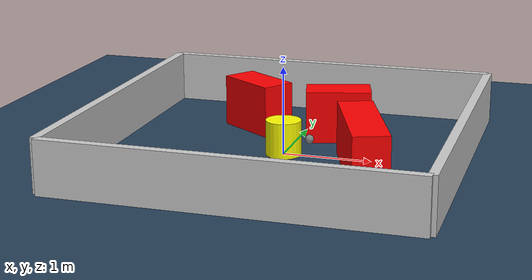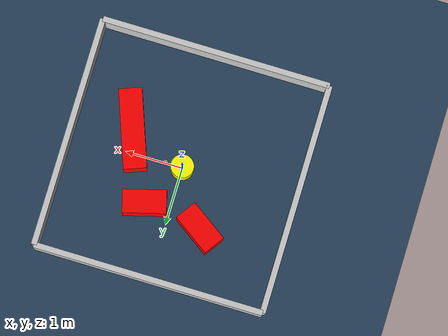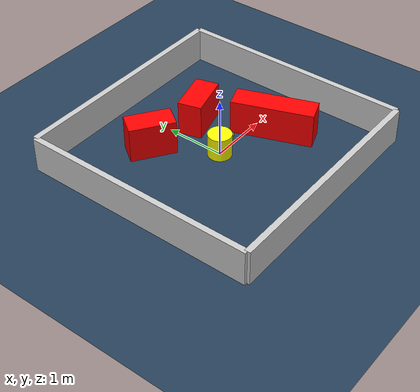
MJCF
<?xml version="1.0" ?>
<mujoco model="generated_environment">
  <option timestep="0.01" integrator="RK4" cone="elliptic"/>
  <default>
    <geom density="1"/>
  </default>
  <asset>
    <texture builtin="gradient" height="3072" rgb1="0.3 0.5 0.7" rgb2="0 0 0" type="skybox" width="512"/>
    <texture builtin="checker" height="300" mark="edge" markrgb="0.8 0.8 0.8" name="groundplane" rgb1="0.2 0.3 0.4" rgb2="0.1 0.2 0.3" type="2d" width="300"/>
    <material name="groundplane" reflectance="0.2" texrepeat="5 5" texture="groundplane" texuniform="true"/>
    <material name="robot" rgba="0.0 1.0 0.0 1"/>
  </asset>
  <worldbody>
    <light dir="0 0 -1" directional="true" pos="0 0 1.5"/>
    <geom condim="4" friction="1.0 0.005 0.001" material="groundplane" name="floor" size="0 0 0.05" type="plane"/>
    <body name="walls">
      <geom name="wall_1" condim="4" pos="-2.0 0.0 0.3" rgba="0.800000011920929 0.800000011920929 0.800000011920929 1.0" size="0.05 2.0 0.3" type="box"/>
      <geom name="wall_2" condim="4" pos="2.0 0.0 0.3" rgba="0.800000011920929 0.800000011920929 0.800000011920929 1.0" size="0.05 2.0 0.3" type="box"/>
      <geom name="wall_3" condim="4" pos="0.0 -2.0 0.3" rgba="0.800000011920929 0.800000011920929 0.800000011920929 1.0" size="2.0 0.05 0.3" type="box"/>
      <geom name="wall_4" condim="4" pos="0.0 2.0 0.3" rgba="0.800000011920929 0.800000011920929 0.800000011920929 1.0" size="2.0 0.05 0.3" type="box"/>
    </body>
    <body name="robot">
      <joint name="joint_x" type="slide" pos="0 0 0" axis="1 0 0"/>
      <joint name="joint_y" type="slide" pos="0 0 0" axis="0 1 0"/>
      <geom name="robot" type="sphere" pos="0.3 0.0 0.2" size="0.05" mass="5." friction="1.0 0.005 0.0001" condim="4" rgba="0.5 0.5 0.5 1.0"/>
      <site name="sensor_ball"/>
    </body>
    <body name="obstacle_movable_1">
      <geom name="obstacle_movable_1" condim="4" pos="0.0 0.0 0.2" euler="0 0 0.0" friction="1.0 0.005 0.001" rgba="1.0 1.0 0.0 1.0" size="0.2 0.2 0.0" type="cylinder" mass="0.1"/>
      <joint type="free"/>
    </body>
    <body name="obstacle_2_static">
      <geom name="obstacle_2_static" condim="4" pos="0.43562420506704713 0.7716023750850602 0.3" euler="0 0 15.328661393102422" friction="1.0 0.005 0.001" rgba="1 0 0 1" size="0.37358586212136086 0.2 0.3" type="box"/>
    </body>
    <body name="obstacle_3_static">
      <geom name="obstacle_3_static" condim="4" pos="-0.5875382533643942 0.9301320105477326 0.3" euler="0 0 145.47717599901486" friction="1.0 0.005 0.001" rgba="1 0 0 1" size="0.38351708479958635 0.2 0.3" type="box"/>
    </body>
    <body name="obstacle_4_static">
      <geom name="obstacle_4_static" condim="4" pos="0.9813413040142778 -0.3554749276248259 0.3" euler="0 0 110.18944633186635" friction="1.0 0.005 0.001" rgba="1 0 0 1" size="0.6839226510660267 0.2 0.3" type="box"/>
    </body>
  </worldbody>
  <actuator>
    <motor name="actuator_x" joint="joint_x" gear="1" ctrlrange="-1 1"/>
    <motor name="actuator_y" joint="joint_y" gear="1" ctrlrange="-1 1"/>
  </actuator>
</mujoco>
